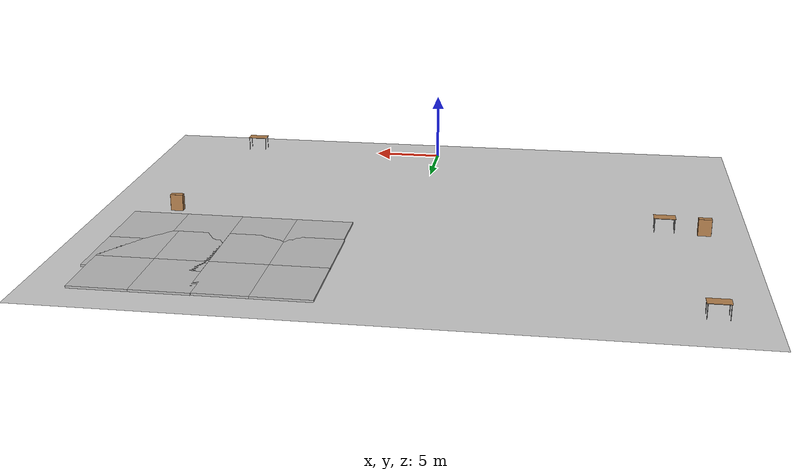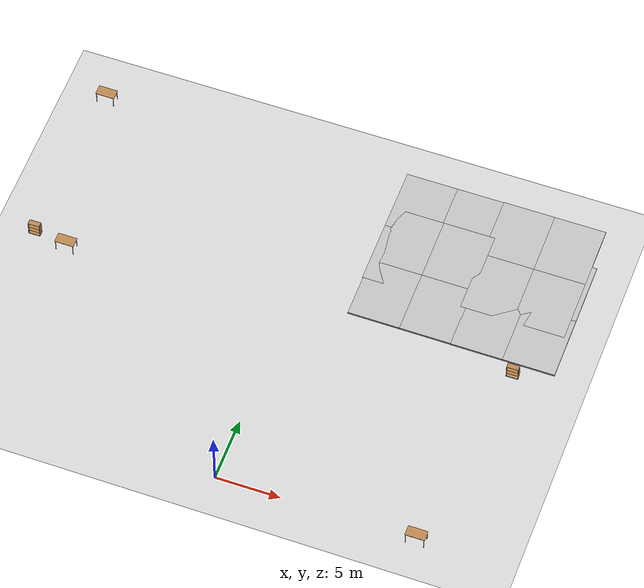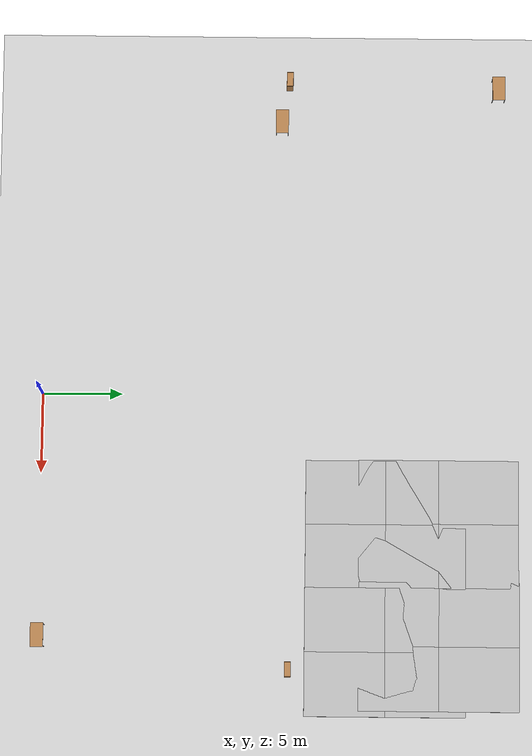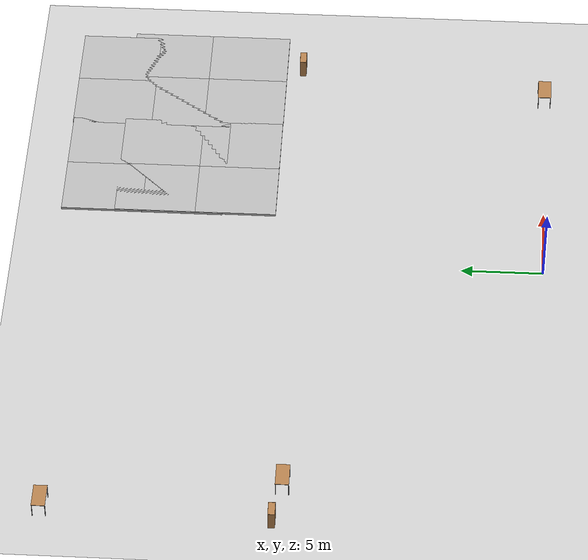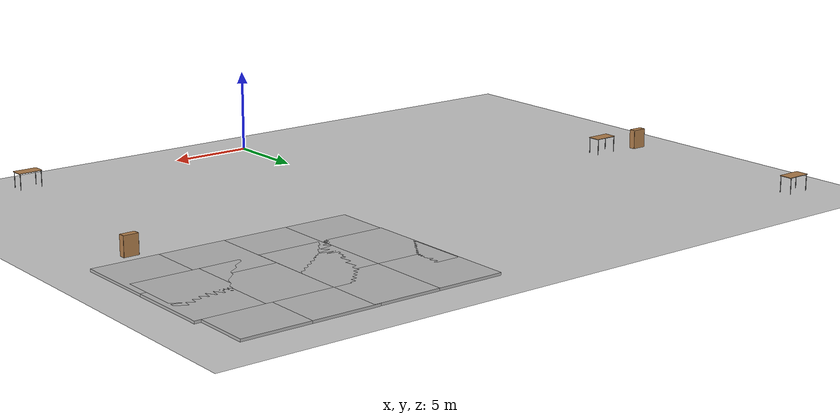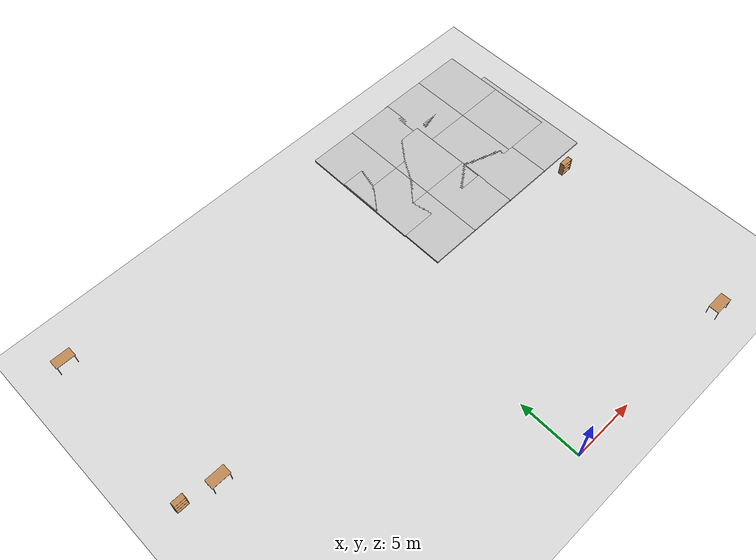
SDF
<sdf version="1.7">
 <world name="empty_world">
  <model name="ground_plane">
   <static>1</static>
   <link name="link">
    <collision name="collision">
     <geometry><plane><normal>0 0 1</normal><size>1 1</size></plane></geometry>
    </collision>
    <visual name="visual">
     <geometry><plane><normal>0 0 1</normal><size>100 100</size></plane></geometry>
     <material>
      <ambient>0.8 0.8 0.8 1</ambient>
      <diffuse>0.8 0.8 0.8 1</diffuse>
      <specular>0.8 0.8 0.8 1</specular>
     </material>
    </visual>
   </link>
  </model>
  <model name="table">
   <static>1</static>
   <link name="link">
    <collision name="surface">
     <pose>0 0 1 0 -0 0</pose>
     <geometry><box><size>1.5 0.8 0.03</size></box></geometry>
     <surface><friction><ode><mu>0.6</mu><mu2>0.6</mu2></ode></friction></surface>
    </collision>
    <visual name="visual1">
     <pose>0 0 1 0 -0 0</pose>
     <geometry><box><size>1.5 0.8 0.03</size></box></geometry>
     <material>
      <script><uri>file://media/materials/scripts/gazebo.material</uri><name>Gazebo/Wood</name></script>
     </material>
    </visual>
    <collision name="front_left_leg">
     <pose>0.68 0.38 0.5 0 -0 0</pose>
     <geometry><cylinder><radius>0.02</radius><length>1</length></cylinder></geometry>
    </collision>
    <visual name="front_left_leg">
     <pose>0.68 0.38 0.5 0 -0 0</pose>
     <geometry><cylinder><radius>0.02</radius><length>1</length></cylinder></geometry>
     <material>
      <script><uri>file://media/materials/scripts/gazebo.material</uri><name>Gazebo/Grey</name></script>
     </material>
    </visual>
    <collision name="front_right_leg">
     <pose>0.68 -0.38 0.5 0 -0 0</pose>
     <geometry><cylinder><radius>0.02</radius><length>1</length></cylinder></geometry>
    </collision>
    <visual name="front_right_leg">
     <pose>0.68 -0.38 0.5 0 -0 0</pose>
     <geometry><cylinder><radius>0.02</radius><length>1</length></cylinder></geometry>
     <material>
      <script><uri>file://media/materials/scripts/gazebo.material</uri><name>Gazebo/Grey</name></script>
     </material>
    </visual>
    <collision name="back_right_leg">
     <pose>-0.68 -0.38 0.5 0 -0 0</pose>
     <geometry><cylinder><radius>0.02</radius><length>1</length></cylinder></geometry>
    </collision>
    <visual name="back_right_leg">
     <pose>-0.68 -0.38 0.5 0 -0 0</pose>
     <geometry><cylinder><radius>0.02</radius><length>1</length></cylinder></geometry>
     <material>
      <script><uri>file://media/materials/scripts/gazebo.material</uri><name>Gazebo/Grey</name></script>
     </material>
    </visual>
    <collision name="back_left_leg">
     <pose>-0.68 0.38 0.5 0 -0 0</pose>
     <geometry><cylinder><radius>0.02</radius><length>1</length></cylinder></geometry>
    </collision>
    <visual name="back_left_leg">
     <pose>-0.68 0.38 0.5 0 -0 0</pose>
     <geometry><cylinder><radius>0.02</radius><length>1</length></cylinder></geometry>
     <material>
      <script><uri>file://media/materials/scripts/gazebo.material</uri><name>Gazebo/Grey</name></script>
     </material>
    </visual>
   </link>
   <pose>-19.7579 28.6277 0 0 -0 0</pose>
  </model>
  <model name="table_0">
   <static>1</static>
   <link name="link">
    <collision name="surface">
     <pose>0 0 1 0 -0 0</pose>
     <geometry><box><size>1.5 0.8 0.03</size></box></geometry>
     <surface><friction><ode><mu>0.6</mu><mu2>0.6</mu2></ode></friction></surface>
    </collision>
    <visual name="visual1">
     <pose>0 0 1 0 -0 0</pose>
     <geometry><box><size>1.5 0.8 0.03</size></box></geometry>
     <material>
      <script><uri>file://media/materials/scripts/gazebo.material</uri><name>Gazebo/Wood</name></script>
     </material>
    </visual>
    <collision name="front_left_leg">
     <pose>0.68 0.38 0.5 0 -0 0</pose>
     <geometry><cylinder><radius>0.02</radius><length>1</length></cylinder></geometry>
    </collision>
    <visual name="front_left_leg">
     <pose>0.68 0.38 0.5 0 -0 0</pose>
     <geometry><cylinder><radius>0.02</radius><length>1</length></cylinder></geometry>
     <material>
      <script><uri>file://media/materials/scripts/gazebo.material</uri><name>Gazebo/Grey</name></script>
     </material>
    </visual>
    <collision name="front_right_leg">
     <pose>0.68 -0.38 0.5 0 -0 0</pose>
     <geometry><cylinder><radius>0.02</radius><length>1</length></cylinder></geometry>
    </collision>
    <visual name="front_right_leg">
     <pose>0.68 -0.38 0.5 0 -0 0</pose>
     <geometry><cylinder><radius>0.02</radius><length>1</length></cylinder></geometry>
     <material>
      <script><uri>file://media/materials/scripts/gazebo.material</uri><name>Gazebo/Grey</name></script>
     </material>
    </visual>
    <collision name="back_right_leg">
     <pose>-0.68 -0.38 0.5 0 -0 0</pose>
     <geometry><cylinder><radius>0.02</radius><length>1</length></cylinder></geometry>
    </collision>
    <visual name="back_right_leg">
     <pose>-0.68 -0.38 0.5 0 -0 0</pose>
     <geometry><cylinder><radius>0.02</radius><length>1</length></cylinder></geometry>
     <material>
      <script><uri>file://media/materials/scripts/gazebo.material</uri><name>Gazebo/Grey</name></script>
     </material>
    </visual>
    <collision name="back_left_leg">
     <pose>-0.68 0.38 0.5 0 -0 0</pose>
     <geometry><cylinder><radius>0.02</radius><length>1</length></cylinder></geometry>
    </collision>
    <visual name="back_left_leg">
     <pose>-0.68 0.38 0.5 0 -0 0</pose>
     <geometry><cylinder><radius>0.02</radius><length>1</length></cylinder></geometry>
     <material>
      <script><uri>file://media/materials/scripts/gazebo.material</uri><name>Gazebo/Grey</name></script>
     </material>
    </visual>
   </link>
   <pose>15.1955 0.014199 0 0 -0 0</pose>
  </model>
  <model name="mud_box">
   <static>1</static>
   <link name="link">
    <collision name="collision"><geometry><box><size>8 10 0.2</size></box></geometry></collision>
    <visual name="visual_1">
     <pose>-2 2.5 0 0 -0 0</pose>
     <cast_shadows>0</cast_shadows>
     <geometry><box><size>4 5 0.2</size></box></geometry>
     <material>
      <script>
       <uri>model://mud_box/materials/scripts</uri>
       <uri>model://mud_box/materials/textures</uri>
       <name>vrc/mud</name>
      </script>
     </material>
    </visual>
    <visual name="visual_2">
     <pose>2 2.5 0 0 -0 0</pose>
     <cast_shadows>0</cast_shadows>
     <geometry><box><size>4 5 0.2</size></box></geometry>
     <material>
      <script>
       <uri>model://mud_box/materials/scripts</uri>
       <uri>model://mud_box/materials/textures</uri>
       <name>vrc/mud</name>
      </script>
     </material>
    </visual>
    <visual name="visual_3">
     <pose>2 -2.5 0 0 -0 0</pose>
     <cast_shadows>0</cast_shadows>
     <geometry><box><size>4 5 0.2</size></box></geometry>
     <material>
      <script>
       <uri>model://mud_box/materials/scripts</uri>
       <uri>model://mud_box/materials/textures</uri>
       <name>vrc/mud</name>
      </script>
     </material>
    </visual>
    <visual name="visual_4">
     <pose>-2 -2.5 0 0 -0 0</pose>
     <cast_shadows>0</cast_shadows>
     <geometry><box><size>4 5 0.2</size></box></geometry>
     <material>
      <script>
       <uri>model://mud_box/materials/scripts</uri>
       <uri>model://mud_box/materials/textures</uri>
       <name>vrc/mud</name>
      </script>
     </material>
    </visual>
   </link>
   <pose>8.02077 24.8628 0 0 -0 0</pose>
  </model>
  <model name="mud_box_0">
   <static>1</static>
   <link name="link">
    <collision name="collision"><geometry><box><size>8 10 0.2</size></box></geometry></collision>
    <visual name="visual_1">
     <pose>-2 2.5 0 0 -0 0</pose>
     <cast_shadows>0</cast_shadows>
     <geometry><box><size>4 5 0.2</size></box></geometry>
     <material>
      <script>
       <uri>model://mud_box/materials/scripts</uri>
       <uri>model://mud_box/materials/textures</uri>
       <name>vrc/mud</name>
      </script>
     </material>
    </visual>
    <visual name="visual_2">
     <pose>2 2.5 0 0 -0 0</pose>
     <cast_shadows>0</cast_shadows>
     <geometry><box><size>4 5 0.2</size></box></geometry>
     <material>
      <script>
       <uri>model://mud_box/materials/scripts</uri>
       <uri>model://mud_box/materials/textures</uri>
       <name>vrc/mud</name>
      </script>
     </material>
    </visual>
    <visual name="visual_3">
     <pose>2 -2.5 0 0 -0 0</pose>
     <cast_shadows>0</cast_shadows>
     <geometry><box><size>4 5 0.2</size></box></geometry>
     <material>
      <script>
       <uri>model://mud_box/materials/scripts</uri>
       <uri>model://mud_box/materials/textures</uri>
       <name>vrc/mud</name>
      </script>
     </material>
    </visual>
    <visual name="visual_4">
     <pose>-2 -2.5 0 0 -0 0</pose>
     <cast_shadows>0</cast_shadows>
     <geometry><box><size>4 5 0.2</size></box></geometry>
     <material>
      <script>
       <uri>model://mud_box/materials/scripts</uri>
       <uri>model://mud_box/materials/textures</uri>
       <name>vrc/mud</name>
      </script>
     </material>
    </visual>
   </link>
   <pose>15.6623 24.8968 0 0 -0 0</pose>
  </model>
  <model name="mud_box_2">
   <static>1</static>
   <link name="link">
    <collision name="collision"><geometry><box><size>8 10 0.2</size></box></geometry></collision>
    <visual name="visual_1">
     <pose>-2 2.5 0 0 -0 0</pose>
     <cast_shadows>0</cast_shadows>
     <geometry><box><size>4 5 0.2</size></box></geometry>
     <material>
      <script>
       <uri>model://mud_box/materials/scripts</uri>
       <uri>model://mud_box/materials/textures</uri>
       <name>vrc/mud</name>
      </script>
     </material>
    </visual>
    <visual name="visual_2">
     <pose>2 2.5 0 0 -0 0</pose>
     <cast_shadows>0</cast_shadows>
     <geometry><box><size>4 5 0.2</size></box></geometry>
     <material>
      <script>
       <uri>model://mud_box/materials/scripts</uri>
       <uri>model://mud_box/materials/textures</uri>
       <name>vrc/mud</name>
      </script>
     </material>
    </visual>
    <visual name="visual_3">
     <pose>2 -2.5 0 0 -0 0</pose>
     <cast_shadows>0</cast_shadows>
     <geometry><box><size>4 5 0.2</size></box></geometry>
     <material>
      <script>
       <uri>model://mud_box/materials/scripts</uri>
       <uri>model://mud_box/materials/textures</uri>
       <name>vrc/mud</name>
      </script>
     </material>
    </visual>
    <visual name="visual_4">
     <pose>-2 -2.5 0 0 -0 0</pose>
     <cast_shadows>0</cast_shadows>
     <geometry><box><size>4 5 0.2</size></box></geometry>
     <material>
      <script>
       <uri>model://mud_box/materials/scripts</uri>
       <uri>model://mud_box/materials/textures</uri>
       <name>vrc/mud</name>
      </script>
     </material>
    </visual>
   </link>
   <pose>8.0788 21.5584 0 0 -0 0</pose>
  </model>
  <model name="mud_box_3">
   <static>1</static>
   <link name="link">
    <collision name="collision"><geometry><box><size>8 10 0.2</size></box></geometry></collision>
    <visual name="visual_1">
     <pose>-2 2.5 0 0 -0 0</pose>
     <cast_shadows>0</cast_shadows>
     <geometry><box><size>4 5 0.2</size></box></geometry>
     <material>
      <script>
       <uri>model://mud_box/materials/scripts</uri>
       <uri>model://mud_box/materials/textures</uri>
       <name>vrc/mud</name>
      </script>
     </material>
    </visual>
    <visual name="visual_2">
     <pose>2 2.5 0 0 -0 0</pose>
     <cast_shadows>0</cast_shadows>
     <geometry><box><size>4 5 0.2</size></box></geometry>
     <material>
      <script>
       <uri>model://mud_box/materials/scripts</uri>
       <uri>model://mud_box/materials/textures</uri>
       <name>vrc/mud</name>
      </script>
     </material>
    </visual>
    <visual name="visual_3">
     <pose>2 -2.5 0 0 -0 0</pose>
     <cast_shadows>0</cast_shadows>
     <geometry><box><size>4 5 0.2</size></box></geometry>
     <material>
      <script>
       <uri>model://mud_box/materials/scripts</uri>
       <uri>model://mud_box/materials/textures</uri>
       <name>vrc/mud</name>
      </script>
     </material>
    </visual>
    <visual name="visual_4">
     <pose>-2 -2.5 0 0 -0 0</pose>
     <cast_shadows>0</cast_shadows>
     <geometry><box><size>4 5 0.2</size></box></geometry>
     <material>
      <script>
       <uri>model://mud_box/materials/scripts</uri>
       <uri>model://mud_box/materials/textures</uri>
       <name>vrc/mud</name>
      </script>
     </material>
    </visual>
   </link>
   <pose>16.0311 21.5429 0 0 -0 0</pose>
  </model>
  <model name="bookshelf">
   <static>1</static>
   <link name="link">
    <inertial><mass>1</mass></inertial>
    <collision name="back">
     <pose>0 0.005 0.6 0 -0 0</pose>
     <geometry><box><size>0.9 0.01 1.2</size></box></geometry>
    </collision>
    <visual name="visual1">
     <pose>0 0.005 0.6 0 -0 0</pose>
     <geometry><box><size>0.9 0.01 1.2</size></box></geometry>
     <material>
      <script><uri>file://media/materials/scripts/gazebo.material</uri><name>Gazebo/Wood</name></script>
     </material>
    </visual>
    <collision name="left_side">
     <pose>0.45 -0.195 0.6 0 -0 0</pose>
     <geometry><box><size>0.02 0.4 1.2</size></box></geometry>
    </collision>
    <visual name="visual2">
     <pose>0.45 -0.195 0.6 0 -0 0</pose>
     <geometry><box><size>0.02 0.4 1.2</size></box></geometry>
     <material>
      <script><uri>file://media/materials/scripts/gazebo.material</uri><name>Gazebo/Wood</name></script>
     </material>
    </visual>
    <collision name="right_side">
     <pose>-0.45 -0.195 0.6 0 -0 0</pose>
     <geometry><box><size>0.02 0.4 1.2</size></box></geometry>
    </collision>
    <visual name="visual3">
     <pose>-0.45 -0.195 0.6 0 -0 0</pose>
     <geometry><box><size>0.02 0.4 1.2</size></box></geometry>
     <material>
      <script><uri>file://media/materials/scripts/gazebo.material</uri><name>Gazebo/Wood</name></script>
     </material>
    </visual>
    <collision name="bottom">
     <pose>0 -0.195 0.03 0 -0 0</pose>
     <geometry><box><size>0.88 0.4 0.06</size></box></geometry>
    </collision>
    <visual name="visual4">
     <pose>0 -0.195 0.03 0 -0 0</pose>
     <geometry><box><size>0.88 0.4 0.06</size></box></geometry>
     <material>
      <script><uri>file://media/materials/scripts/gazebo.material</uri><name>Gazebo/Wood</name></script>
     </material>
    </visual>
    <collision name="top">
     <pose>0 -0.195 1.19 0 -0 0</pose>
     <geometry><box><size>0.88 0.4 0.02</size></box></geometry>
    </collision>
    <visual name="visual5">
     <pose>0 -0.195 1.19 0 -0 0</pose>
     <geometry><box><size>0.88 0.4 0.02</size></box></geometry>
     <material>
      <script><uri>file://media/materials/scripts/gazebo.material</uri><name>Gazebo/Wood</name></script>
     </material>
    </visual>
    <collision name="low_shelf">
     <pose>0 -0.195 0.43 0 -0 0</pose>
     <geometry><box><size>0.88 0.4 0.02</size></box></geometry>
    </collision>
    <visual name="visual6">
     <pose>0 -0.195 0.43 0 -0 0</pose>
     <geometry><box><size>0.88 0.4 0.02</size></box></geometry>
     <material>
      <script><uri>file://media/materials/scripts/gazebo.material</uri><name>Gazebo/Wood</name></script>
     </material>
    </visual>
    <collision name="high_shelf">
     <pose>0 -0.195 0.8 0 -0 0</pose>
     <geometry><box><size>0.88 0.4 0.02</size></box></geometry>
    </collision>
    <visual name="visual7">
     <pose>0 -0.195 0.8 0 -0 0</pose>
     <geometry><box><size>0.88 0.4 0.02</size></box></geometry>
     <material>
      <script><uri>file://media/materials/scripts/gazebo.material</uri><name>Gazebo/Wood</name></script>
     </material>
    </visual>
   </link>
   <pose>-20.1748 15.5428 0 0 -0 0</pose>
  </model>
  <model name="bookshelf_0">
   <static>1</static>
   <link name="link">
    <inertial><mass>1</mass></inertial>
    <collision name="back">
     <pose>0 0.005 0.6 0 -0 0</pose>
     <geometry><box><size>0.9 0.01 1.2</size></box></geometry>
    </collision>
    <visual name="visual1">
     <pose>0 0.005 0.6 0 -0 0</pose>
     <geometry><box><size>0.9 0.01 1.2</size></box></geometry>
     <material>
      <script><uri>file://media/materials/scripts/gazebo.material</uri><name>Gazebo/Wood</name></script>
     </material>
    </visual>
    <collision name="left_side">
     <pose>0.45 -0.195 0.6 0 -0 0</pose>
     <geometry><box><size>0.02 0.4 1.2</size></box></geometry>
    </collision>
    <visual name="visual2">
     <pose>0.45 -0.195 0.6 0 -0 0</pose>
     <geometry><box><size>0.02 0.4 1.2</size></box></geometry>
     <material>
      <script><uri>file://media/materials/scripts/gazebo.material</uri><name>Gazebo/Wood</name></script>
     </material>
    </visual>
    <collision name="right_side">
     <pose>-0.45 -0.195 0.6 0 -0 0</pose>
     <geometry><box><size>0.02 0.4 1.2</size></box></geometry>
    </collision>
    <visual name="visual3">
     <pose>-0.45 -0.195 0.6 0 -0 0</pose>
     <geometry><box><size>0.02 0.4 1.2</size></box></geometry>
     <material>
      <script><uri>file://media/materials/scripts/gazebo.material</uri><name>Gazebo/Wood</name></script>
     </material>
    </visual>
    <collision name="bottom">
     <pose>0 -0.195 0.03 0 -0 0</pose>
     <geometry><box><size>0.88 0.4 0.06</size></box></geometry>
    </collision>
    <visual name="visual4">
     <pose>0 -0.195 0.03 0 -0 0</pose>
     <geometry><box><size>0.88 0.4 0.06</size></box></geometry>
     <material>
      <script><uri>file://media/materials/scripts/gazebo.material</uri><name>Gazebo/Wood</name></script>
     </material>
    </visual>
    <collision name="top">
     <pose>0 -0.195 1.19 0 -0 0</pose>
     <geometry><box><size>0.88 0.4 0.02</size></box></geometry>
    </collision>
    <visual name="visual5">
     <pose>0 -0.195 1.19 0 -0 0</pose>
     <geometry><box><size>0.88 0.4 0.02</size></box></geometry>
     <material>
      <script><uri>file://media/materials/scripts/gazebo.material</uri><name>Gazebo/Wood</name></script>
     </material>
    </visual>
    <collision name="low_shelf">
     <pose>0 -0.195 0.43 0 -0 0</pose>
     <geometry><box><size>0.88 0.4 0.02</size></box></geometry>
    </collision>
    <visual name="visual6">
     <pose>0 -0.195 0.43 0 -0 0</pose>
     <geometry><box><size>0.88 0.4 0.02</size></box></geometry>
     <material>
      <script><uri>file://media/materials/scripts/gazebo.material</uri><name>Gazebo/Wood</name></script>
     </material>
    </visual>
    <collision name="high_shelf">
     <pose>0 -0.195 0.8 0 -0 0</pose>
     <geometry><box><size>0.88 0.4 0.02</size></box></geometry>
    </collision>
    <visual name="visual7">
     <pose>0 -0.195 0.8 0 -0 0</pose>
     <geometry><box><size>0.88 0.4 0.02</size></box></geometry>
     <material>
      <script><uri>file://media/materials/scripts/gazebo.material</uri><name>Gazebo/Wood</name></script>
     </material>
    </visual>
   </link>
   <pose>17.1726 15.7133 0 0 -0 0</pose>
  </model>
  <model name="table_1">
   <static>1</static>
   <link name="link">
    <collision name="surface">
     <pose>0 0 1 0 -0 0</pose>
     <geometry><box><size>1.5 0.8 0.03</size></box></geometry>
     <surface><friction><ode><mu>0.6</mu><mu2>0.6</mu2></ode></friction></surface>
    </collision>
    <visual name="visual1">
     <pose>0 0 1 0 -0 0</pose>
     <geometry><box><size>1.5 0.8 0.03</size></box></geometry>
     <material>
      <script><uri>file://media/materials/scripts/gazebo.material</uri><name>Gazebo/Wood</name></script>
     </material>
    </visual>
    <collision name="front_left_leg">
     <pose>0.68 0.38 0.5 0 -0 0</pose>
     <geometry><cylinder><radius>0.02</radius><length>1</length></cylinder></geometry>
    </collision>
    <visual name="front_left_leg">
     <pose>0.68 0.38 0.5 0 -0 0</pose>
     <geometry><cylinder><radius>0.02</radius><length>1</length></cylinder></geometry>
     <material>
      <script><uri>file://media/materials/scripts/gazebo.material</uri><name>Gazebo/Grey</name></script>
     </material>
    </visual>
    <collision name="front_right_leg">
     <pose>0.68 -0.38 0.5 0 -0 0</pose>
     <geometry><cylinder><radius>0.02</radius><length>1</length></cylinder></geometry>
    </collision>
    <visual name="front_right_leg">
     <pose>0.68 -0.38 0.5 0 -0 0</pose>
     <geometry><cylinder><radius>0.02</radius><length>1</length></cylinder></geometry>
     <material>
      <script><uri>file://media/materials/scripts/gazebo.material</uri><name>Gazebo/Grey</name></script>
     </material>
    </visual>
    <collision name="back_right_leg">
     <pose>-0.68 -0.38 0.5 0 -0 0</pose>
     <geometry><cylinder><radius>0.02</radius><length>1</length></cylinder></geometry>
    </collision>
    <visual name="back_right_leg">
     <pose>-0.68 -0.38 0.5 0 -0 0</pose>
     <geometry><cylinder><radius>0.02</radius><length>1</length></cylinder></geometry>
     <material>
      <script><uri>file://media/materials/scripts/gazebo.material</uri><name>Gazebo/Grey</name></script>
     </material>
    </visual>
    <collision name="back_left_leg">
     <pose>-0.68 0.38 0.5 0 -0 0</pose>
     <geometry><cylinder><radius>0.02</radius><length>1</length></cylinder></geometry>
    </collision>
    <visual name="back_left_leg">
     <pose>-0.68 0.38 0.5 0 -0 0</pose>
     <geometry><cylinder><radius>0.02</radius><length>1</length></cylinder></geometry>
     <material>
      <script><uri>file://media/materials/scripts/gazebo.material</uri><name>Gazebo/Grey</name></script>
     </material>
    </visual>
   </link>
   <pose>-17.4854 14.8747 0 0 -0 0</pose>
  </model>
 </world>
</sdf>
